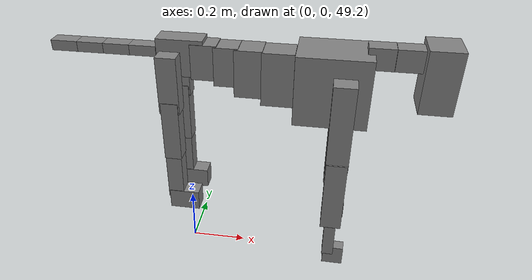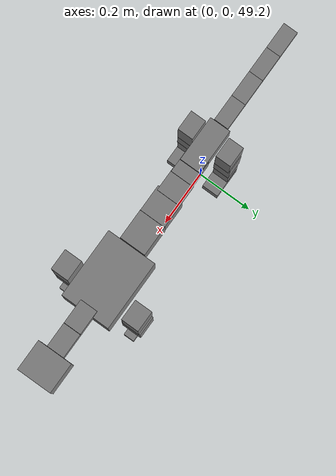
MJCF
<mujoco model="dog">

    <default>
        <joint armature="0.02" stiffness="1" damping="0.2" limited="true"/>
        <geom condim="3" friction="1 0.05 0.05" margin="0.01"/>
        <motor ctrllimited="true" ctrlrange="-1.0 1.0" forcelimited="true" gear="50"/>
    </default>

    <compiler inertiafromgeom="true" angle="radian"/>

    <option timestep="0.016" iterations="50" tolerance="1e-10" solver="Newton" jacobian="dense" cone="pyramidal"/>

    <size nconmax="20000" njmax="60000" nstack="5000000"/>
    <visual>
        <map force="0.1" zfar="30"/>
        <rgba haze="0.15 0.25 0.35 1"/>
        <quality shadowsize="2048"/>
        <global offwidth="800" offheight="800"/>
    </visual>

    <asset>
        <texture type="skybox" builtin="gradient" rgb1="0.3 0.5 0.7" rgb2="0 0 0" width="512" height="512"/>
        <texture name="texplane" type="2d" builtin="checker" rgb1=".2 .3 .4" rgb2=".1 0.15 0.2" width="512" height="512"
                 mark="cross" markrgb=".8 .8 .8"/>
        <texture name="texgeom" type="cube" builtin="flat" mark="cross" width="127" height="1278" rgb1="0.8 0.6 0.4"
                 rgb2="0.8 0.6 0.4" markrgb="1 1 1" random="0.01"/>

        <material name="matplane" reflectance="0.3" texture="texplane" texrepeat="1 1" texuniform="true"/>
        <material name="matgeom" texture="texgeom" texuniform="true" rgba="0.8 0.6 .4 1"/>
    </asset>

    <worldbody>
        <geom name="floor" pos="0 0 0" size="0 0 .25" type="plane" material="matplane" condim="3"/>

        <light directional="false" diffuse=".2 .2 .2" specular="0 0 0" pos="0 0 5" dir="0 0 -1" castshadow="false"/>
        <light mode="targetbodycom" target="torso" directional="false" diffuse=".8 .8 .8" specular="0.3 0.3 0.3"
               pos="0 0 4.0" dir="0 0 -1"/>

        <body name="root" pos="0 0 50">
            <freejoint name="root_1"/>
            <geom type="box" pos="0 0 -0.02" size="0.0774  0.0358  0.063" density="2030"/>

            <body name="spine1" pos="0.054 0 0">
                <joint name="spine1_y" axis="0 1 0" range="0 0.7" limited="true"/>
                <geom type="box" pos="0.02375 0 -0.03" size="0.04375  0.0375  0.05985" density="2030"/>

                <body name="spine2" pos="0.0612 0 0">
                    <joint name="spine2_y" axis="0 1 0" range="-0.15 0.15" limited="true"/>
                    <geom type="box" pos="0.03555  0  -0.04" size="0.04055  0.039  0.06615" density="2030"/>

                    <body name="spine3" pos="0.0730 0 0">
                        <joint name="spine3_y" axis="0 1 0" range="-0.15 0.15" limited="true"/>
                        <geom type="box" pos="0.03555  0  -0.057" size="0.04555  0.0445  0.081" density="2030"/>

                        <body name="spine4" pos="0.0780 0 0">
                            <joint name="spine4_y" axis="0 1 0" range="-0.15 0.15" limited="true"/>
                            <geom type="box" pos="0.05265  0  -0.07" size="0.05265  0.045  0.09135" density="2030"/>

                            <body name="torso" pos="0.1082 0 0">
                                <joint name="torso_y" axis="0 1 0" range="-0.15 0.15" limited="true"/>
                                <geom type="box" pos="0.11925  0  -0.085" size="0.11925  0.085  0.11745"
                                      density="2030"/>

                                <body name="neck1" pos="0.2160  0   0.0180">
                                    <joint name="neck1_y" axis="0 1 0" range="-1.2  -1" limited="true"/>
                                    <geom type="box" pos="0.0423  0  0" size="0.0423  0.03  0.036" density="2325"/>

                                    <body name="neck2" pos="0.0853  0  0">
                                        <joint name="neck2_y" axis="0 1 0" range="0.1  0" limited="true"/>
                                        <geom type="box" pos="0.0423  0  0" size="0.0423  0.03  0.036" density="2325"/>

                                        <body name="head" pos="0.0853  0  0">
                                            <joint name="head_y" axis="0 1 0" range="-0.3  -0.2" limited="true"/>
                                            <geom type="box" pos="0.0531  0  -0.055" size="0.0531  0.06  0.1044"
                                                  density="4030"/>

                                        </body>
                                    </body>
                                </body>

                                <body name="front_shoulder" pos="0.156  0   -0.0480">
                                    <joint name="front_shoulder_y" axis="0 1 0" range="-1 1.5" limited="true"/>
                                    <geom type="box" pos="0 0.13 -0.1225" size="0.0360  0.0307  0.1492" density="1158"/>
                                    <geom type="box" pos="0 -0.13 -0.1225" size="0.0360  0.0307  0.1492"
                                          density="1158"/>

                                    <body name="front_elbow" pos="0  0  -0.2451">
                                        <joint name="front_elbow_y" axis="0 1 0" range="-2 0" limited="true"/>
                                        <geom type="box" pos="0 0.13 -0.1278" size="0.0346  0.0354  0.1278"
                                              density="1081"/>
                                        <geom type="box" pos="0 -0.13 -0.1278" size="0.0346  0.0354  0.1278"
                                              density="1081"/>

                                        <body name="front_wrist" pos="0  0  -0.2556">
                                            <joint name="front_wrist_y" axis="0 1 0" range="-0.2 0" limited="true"/>
                                            <geom type="box" pos="0 0.13 -0.0614" size="0.0194  0.0215  0.0745"
                                                  density="1664"/>
                                            <geom type="box" pos="0 -0.13 -0.0614" size="0.0194  0.0215  0.0745"
                                                  density="1664"/>

                                            <body name="front_finger_end" pos="0  0  -0.1228">
                                                <joint name="front_finger_y" axis="0 1 0" range="-0.4 1"
                                                       limited="true"/>
                                                <geom type="box" pos="0.0193  0.13  -0.0199"
                                                      size="0.0354  0.0193  0.0349" density="1515"/>
                                                <geom type="box" pos="0.0193  -0.13  -0.0199"
                                                      size="0.0354  0.0193  0.0349" density="1515"/>

                                            </body>

                                        </body>
                                    </body>
                                </body>

                            </body>
                        </body>
                    </body>
                </body>
            </body>

            <body name="back_hip" pos="-0.03 0 -0.018">
                <joint name="back_hip_y" axis="0 1 0" range="-1.5 0.3" limited="true"/>
                <geom type="box" pos="0 0.07 -0.0762" size="0.0342  0.0268  0.0990" density="1154"/>
                <geom type="box" pos="0 -0.07 -0.0762" size="0.0342  0.0268  0.0990" density="1154"/>

                <body name="back_knee" pos="0  0  -0.1525">
                    <joint name="back_knee_y" axis="0 1 0" range="0 2.8" limited="true"/>
                    <geom type="box" pos="0 0.07 -0.0915" size="0.0294  0.0290  0.1070" density="1227"/>
                    <geom type="box" pos="0 -0.07 -0.0915" size="0.0294  0.0290  0.1070" density="1227"/>

                    <body name="back_ankle" pos="0  0  -0.1829">
                        <joint name="back_ankle_y" axis="0 1 0" range="-2.2 0" limited="true"/>
                        <geom type="box" pos="0 0.07 -0.0858" size="0.0278  0.0278  0.0971" density="1284"/>
                        <geom type="box" pos="0 -0.07 -0.0858" size="0.0278  0.0278  0.0971" density="1284"/>

                        <body name="back_toe_end" pos="0  0  -0.1717">
                            <joint name="back_toe_y" axis="0 1 0" range="-0.4 1" limited="true"/>
                            <geom type="box" pos="0.0291  0.07  -0.0215" size="0.0534  0.0291  0.0365" density="1515"/>
                            <geom type="box" pos="0.0291  -0.07  -0.0215" size="0.0534  0.0291  0.0365" density="1515"/>

                        </body>
                    </body>
                </body>
            </body>

            <body name="tail1" pos="-0.074 0 -0.006">
                <joint name="tail1_y" axis="0 1 0" range="-0.2 0.2" limited="true"/>
                <geom type="box" pos="-0.0536  0  0" size="0.045  0.025  0.0175" density="1587"/>

                <body name="tail2" pos="-0.09 0 0">
                    <joint name="tail2_y" axis="0 1 0" range="-0.2 0.2" limited="true"/>
                    <geom type="box" pos="-0.0536  0  0" size="0.045  0.025  0.0175" density="1587"/>

                    <body name="tail3" pos="-0.09 0 0">
                        <joint name="tail3_y" axis="0 1 0" range="-0.2 0.2" limited="true"/>
                        <geom type="box" pos="-0.0536  0  0" size="0.045  0.025  0.0175" density="1587"/>

                        <body name="tail4" pos="-0.09 0 0">
                            <joint name="tail4_y" axis="0 1 0" range="-0.2 0.2" limited="true"/>
                            <geom type="box" pos="-0.0536  0  0" size="0.045  0.025  0.0175" density="1587"/>

                        </body>
                    </body>
                </body>
            </body>
        </body>
    </worldbody>

    <actuator>
        <motor joint="spine1_y" forcerange="-150 150     "/>
        <motor joint="spine2_y" forcerange="-150 150     "/>
        <motor joint="spine3_y" forcerange="-150 150     "/>
        <motor joint="spine4_y" forcerange="-150 150     "/>
        <motor joint="torso_y" forcerange="-150 150     "/>
        <motor joint="neck1_y" forcerange="-100 100       "/>
        <motor joint="neck2_y" forcerange="-100 100       "/>
        <motor joint="head_y" forcerange="-150 150       "/>
        <motor joint="front_shoulder_y" forcerange="-128.69 176.26"/>
        <motor joint="front_elbow_y" forcerange="-173.18 184.00"/>
        <motor joint="front_wrist_y" forcerange="-61.36 110.95"/>
        <motor joint="front_finger_y" forcerange="-25.37 37.53"/>
        <motor joint="back_hip_y" forcerange="-269.14 288.43"/>
        <motor joint="back_knee_y" forcerange="-336.03 285.55"/>
        <motor joint="back_angle_y" forcerange="-222.21 122.73"/>
        <motor joint="back_toe_y" forcerange="-47.91 105.16"/>
        <motor joint="tail1_y" forcerange="-50 50     "/>
        <motor joint="tail2_y" forcerange="-50 50     "/>
        <motor joint="tail3_y" forcerange="-50 50     "/>
        <motor joint="tail4_y" forcerange="-50 50     "/>
    </actuator>
</mujoco>
